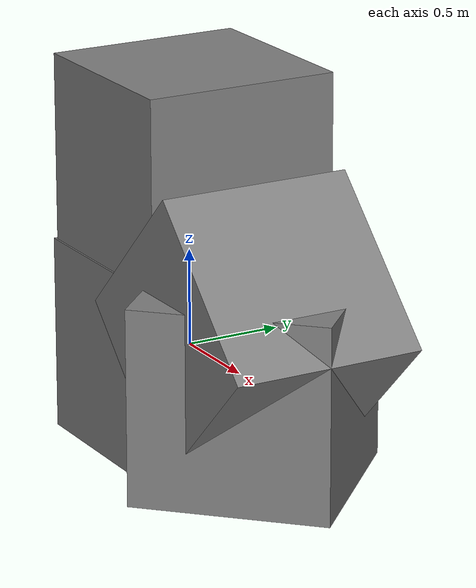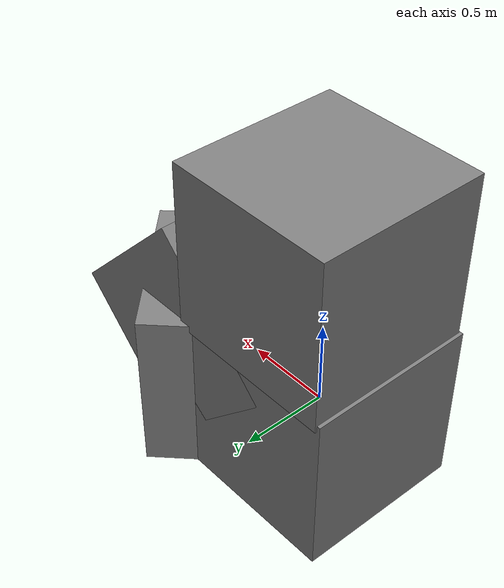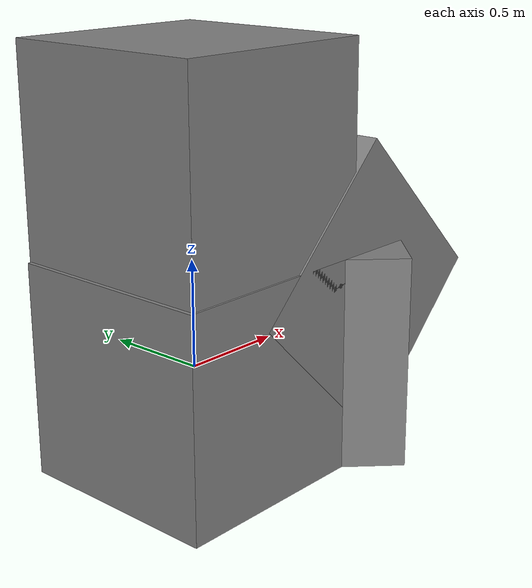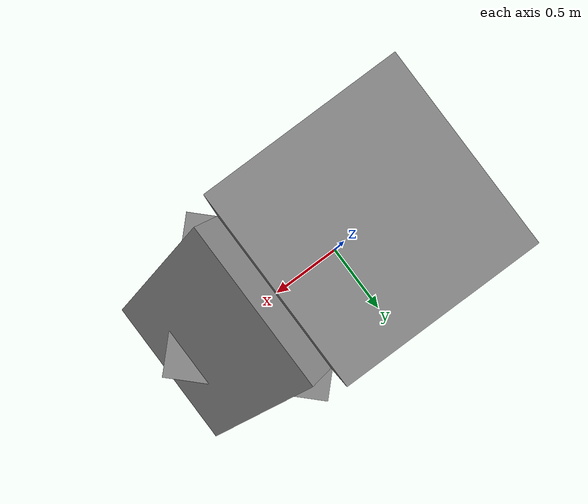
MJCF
<mujoco model="contact_route_mesh_mesh_manifold">
  <compiler angle="radian"/>
  <option gravity="0 0 0"/>
  <asset>
    <mesh name="cube"
          vertex="-0.5 -0.5 -0.5 0.5 -0.5 -0.5 -0.5 0.5 -0.5 0.5 0.5 -0.5
                  -0.5 -0.5 0.5 0.5 -0.5 0.5 -0.5 0.5 0.5 0.5 0.5 0.5"
          face="0 3 1 0 2 3 4 5 7 4 7 6 0 1 5 0 5 4
                 2 6 7 2 7 3 0 4 6 0 6 2 1 3 7 1 7 5"/>
  </asset>
  <contact>
    <pair geom1="mesh_a_face_face" geom2="mesh_b_face_face"/>
    <pair geom1="mesh_a_edge_face" geom2="mesh_b_edge_face"/>
    <pair geom1="mesh_a_vertex_face" geom2="mesh_b_vertex_face"/>
  </contact>
  <worldbody>
    <body name="mesh_a_face_face">
      <freejoint/>
      <inertial pos="0 0 0" mass="1" diaginertia="1 1 1"/>
      <geom name="mesh_a_face_face" type="mesh" mesh="cube"/>
    </body>
    <body name="mesh_b_face_face" pos="0.02 0.01 0.96">
      <freejoint/>
      <inertial pos="0 0 0" mass="1" diaginertia="1 1 1"/>
      <geom name="mesh_b_face_face" type="mesh" mesh="cube"/>
    </body>
    <body name="mesh_a_edge_face">
      <freejoint/>
      <inertial pos="0 0 0" mass="1" diaginertia="1 1 1"/>
      <geom name="mesh_a_edge_face" type="mesh" mesh="cube"/>
    </body>
    <body name="mesh_b_edge_face" pos="0.65 0 0" euler="0 0 0.7853981633974483">
      <freejoint/>
      <inertial pos="0 0 0" mass="1" diaginertia="1 1 1"/>
      <geom name="mesh_b_edge_face" type="mesh" mesh="cube"/>
    </body>
    <body name="mesh_a_vertex_face">
      <freejoint/>
      <inertial pos="0 0 0" mass="1" diaginertia="1 1 1"/>
      <geom name="mesh_a_vertex_face" type="mesh" mesh="cube"/>
    </body>
    <body name="mesh_b_vertex_face" pos="0.65 0 0.3" euler="0 0.7853981633974483 0">
      <freejoint/>
      <inertial pos="0 0 0" mass="1" diaginertia="1 1 1"/>
      <geom name="mesh_b_vertex_face" type="mesh" mesh="cube"/>
    </body>
  </worldbody>
</mujoco>
